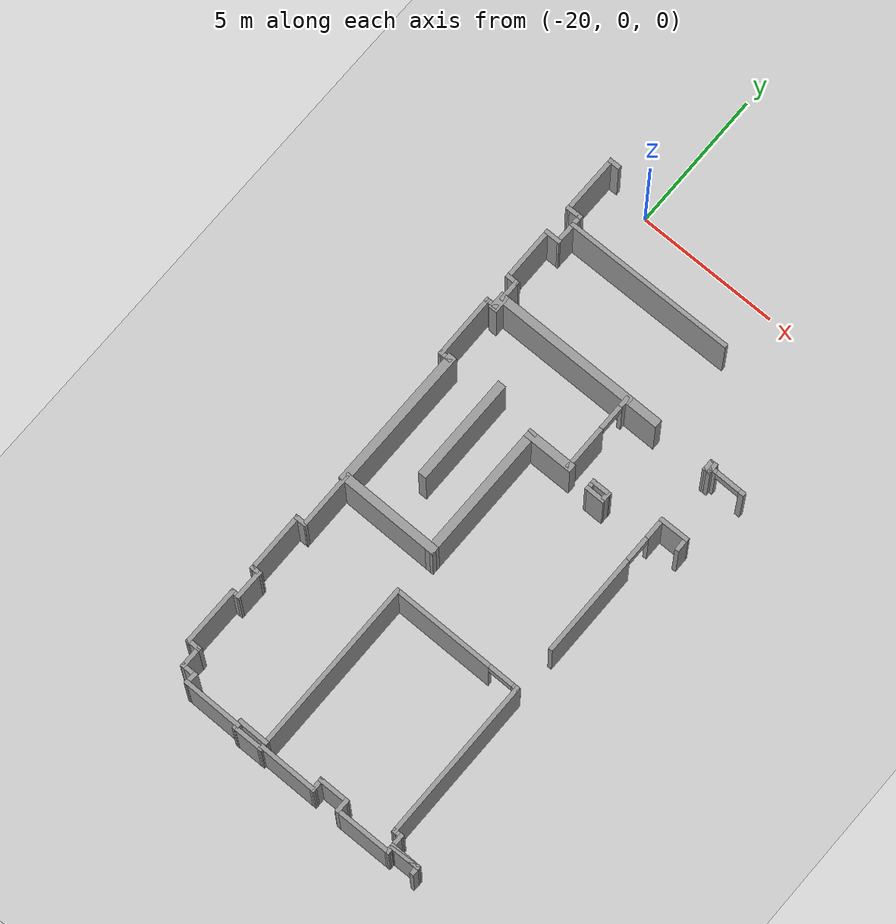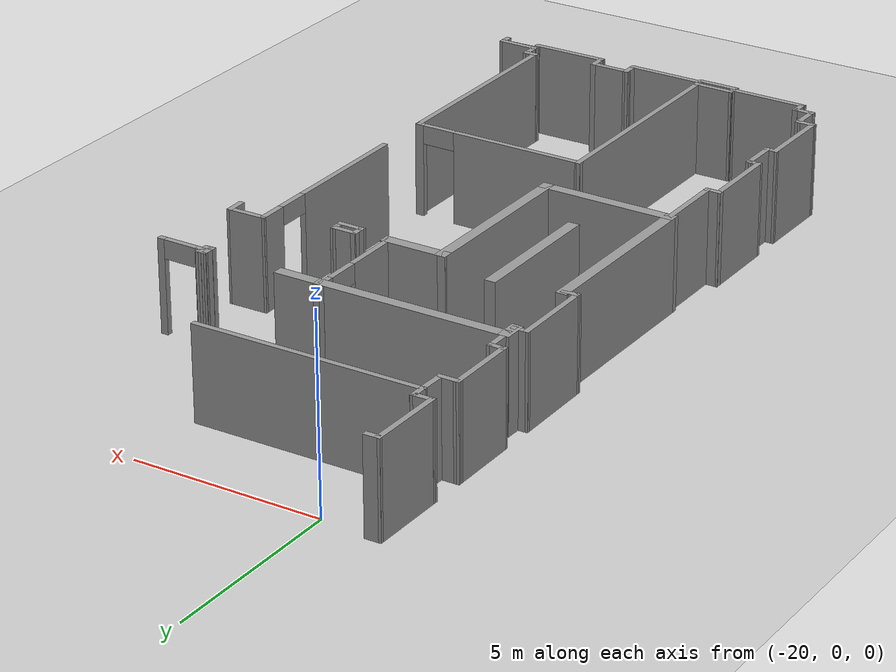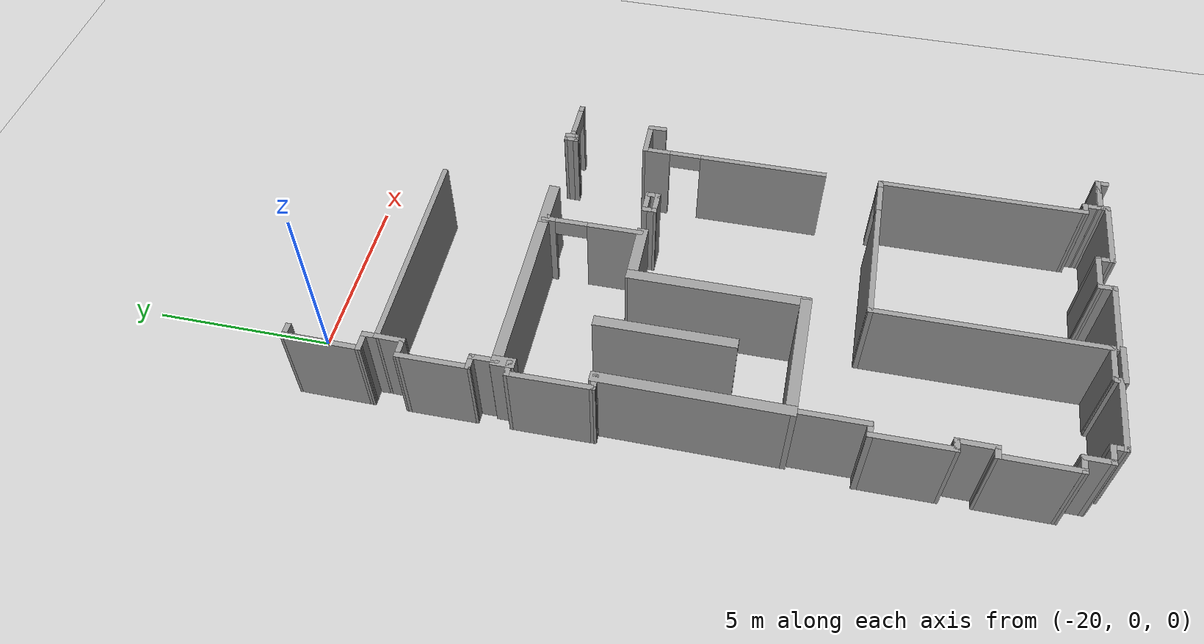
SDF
<sdf version="1.6">
 <world name="default">
  <model name="ground_plane">
   <static>1</static>
   <link name="link">
    <collision name="collision">
     <geometry><plane><normal>0 0 1</normal><size>100 100</size></plane></geometry>
     <surface>
      <contact><collide_bitmask>65535</collide_bitmask></contact>
      <friction><ode><mu>100</mu><mu2>50</mu2></ode></friction>
     </surface>
    </collision>
    <visual name="visual">
     <cast_shadows>0</cast_shadows>
     <geometry><plane><normal>0 0 1</normal><size>100 100</size></plane></geometry>
     <material>
      <script><uri>file://media/materials/scripts/gazebo.material</uri><name>Gazebo/Grey</name></script>
     </material>
    </visual>
   </link>
  </model>
  <model name="Myhal_5th_floor">
   <pose>-0.342666 0.4433 0 0 -0 0</pose>
   <link name="Wall_155">
    <pose>-12.0182 -5.89251 0 0 -0 3.13207</pose>
    <visual name="Wall_155_Visual_0">
     <pose>-0.580241 0 1.25 0 -0 0</pose>
     <geometry><box><size>0.197072 0.15 2.5</size></box></geometry>
     <material>
      <script><uri>file://media/materials/scripts/gazebo.material</uri><name>Gazebo/Grey</name></script>
      <ambient>1 1 1 1</ambient>
     </material>
     <meta><layer>0</layer></meta>
    </visual>
    <collision name="Wall_155_Collision_0">
     <geometry><box><size>0.197072 0.15 2.5</size></box></geometry>
     <pose>-0.580241 0 1.25 0 -0 0</pose>
    </collision>
    <visual name="Wall_155_Visual_1">
     <pose>0.548536 0 1.25 0 -0 0</pose>
     <geometry><box><size>0.260483 0.15 2.5</size></box></geometry>
     <material>
      <script><uri>file://media/materials/scripts/gazebo.material</uri><name>Gazebo/Grey</name></script>
      <ambient>1 1 1 1</ambient>
     </material>
     <meta><layer>0</layer></meta>
    </visual>
    <collision name="Wall_155_Collision_1">
     <geometry><box><size>0.260483 0.15 2.5</size></box></geometry>
     <pose>0.548536 0 1.25 0 -0 0</pose>
    </collision>
    <visual name="Wall_155_Visual_2">
     <pose>-0.031705 0 2.25 0 -0 0</pose>
     <geometry><box><size>0.9 0.15 0.5</size></box></geometry>
     <material>
      <script><uri>file://media/materials/scripts/gazebo.material</uri><name>Gazebo/Grey</name></script>
      <ambient>1 1 1 1</ambient>
     </material>
     <meta><layer>0</layer></meta>
    </visual>
    <collision name="Wall_155_Collision_2">
     <geometry><box><size>0.9 0.15 0.5</size></box></geometry>
     <pose>-0.031705 0 2.25 0 -0 0</pose>
    </collision>
   </link>
   <link name="Wall_156">
    <collision name="Wall_156_Collision">
     <geometry><box><size>0.285613 0.15 2.5</size></box></geometry>
     <pose>0 0 1.25 0 -0 0</pose>
    </collision>
    <visual name="Wall_156_Visual">
     <pose>0 0 1.25 0 -0 0</pose>
     <geometry><box><size>0.285613 0.15 2.5</size></box></geometry>
     <material>
      <script><uri>file://media/materials/scripts/gazebo.material</uri><name>Gazebo/Grey</name></script>
      <ambient>1 1 1 1</ambient>
     </material>
     <meta><layer>0</layer></meta>
    </visual>
    <pose>-12.6248 -5.8192 0 0 -0 1.61332</pose>
   </link>
   <link name="Wall_157">
    <collision name="Wall_157_Collision">
     <geometry><box><size>0.291124 0.15 2.5</size></box></geometry>
     <pose>0 0 1.25 0 -0 0</pose>
    </collision>
    <visual name="Wall_157_Visual">
     <pose>0 0 1.25 0 -0 0</pose>
     <geometry><box><size>0.291124 0.15 2.5</size></box></geometry>
     <material>
      <script><uri>file://media/materials/scripts/gazebo.material</uri><name>Gazebo/Grey</name></script>
      <ambient>1 1 1 1</ambient>
     </material>
     <meta><layer>0</layer></meta>
    </visual>
    <pose>-12.6977 -5.7573 0 0 -0 -3.06086</pose>
   </link>
   <link name="Wall_158">
    <collision name="Wall_158_Collision">
     <geometry><box><size>0.406051 0.15 2.5</size></box></geometry>
     <pose>0 0 1.25 0 -0 0</pose>
    </collision>
    <visual name="Wall_158_Visual">
     <pose>0 0 1.25 0 -0 0</pose>
     <geometry><box><size>0.406051 0.15 2.5</size></box></geometry>
     <material>
      <script><uri>file://media/materials/scripts/gazebo.material</uri><name>Gazebo/Grey</name></script>
      <ambient>1 1 1 1</ambient>
     </material>
     <meta><layer>0</layer></meta>
    </visual>
    <pose>-12.7681 -5.89099 0 0 -0 -1.57431</pose>
   </link>
   <link name="Wall_159">
    <collision name="Wall_159_Collision">
     <geometry><box><size>0.296653 0.15 2.5</size></box></geometry>
     <pose>0 0 1.25 0 -0 0</pose>
    </collision>
    <visual name="Wall_159_Visual">
     <pose>0 0 1.25 0 -0 0</pose>
     <geometry><box><size>0.296653 0.15 2.5</size></box></geometry>
     <material>
      <script><uri>file://media/materials/scripts/gazebo.material</uri><name>Gazebo/Grey</name></script>
      <ambient>1 1 1 1</ambient>
     </material>
     <meta><layer>0</layer></meta>
    </visual>
    <pose>-12.6981 -6.01757 0 0 -0 0.019605</pose>
   </link>
   <link name="Wall_160">
    <collision name="Wall_160_Collision">
     <geometry><box><size>0.296653 0.15 2.5</size></box></geometry>
     <pose>0 0 1.25 0 -0 0</pose>
    </collision>
    <visual name="Wall_160_Visual">
     <pose>0 0 1.25 0 -0 0</pose>
     <geometry><box><size>0.296653 0.15 2.5</size></box></geometry>
     <material>
      <script><uri>file://media/materials/scripts/gazebo.material</uri><name>Gazebo/Grey</name></script>
      <ambient>1 1 1 1</ambient>
     </material>
     <meta><layer>0</layer></meta>
    </visual>
    <pose>-12.6981 -6.01757 0 0 -0 -3.12199</pose>
   </link>
   <link name="Wall_361">
    <pose>-15.0891 -14.9066 0 0 -0 3.14159</pose>
    <visual name="Wall_361_Visual_0">
     <pose>-2.29407 0 1.25 0 -0 0</pose>
     <geometry><box><size>0.242393 0.15 2.5</size></box></geometry>
     <material>
      <script><uri>file://media/materials/scripts/gazebo.material</uri><name>Gazebo/Grey</name></script>
      <ambient>1 1 1 1</ambient>
     </material>
     <meta><layer>0</layer></meta>
    </visual>
    <collision name="Wall_361_Collision_0">
     <geometry><box><size>0.242393 0.15 2.5</size></box></geometry>
     <pose>-2.29407 0 1.25 0 -0 0</pose>
    </collision>
    <visual name="Wall_361_Visual_1">
     <pose>0.571196 0 1.25 0 -0 0</pose>
     <geometry><box><size>3.68814 0.15 2.5</size></box></geometry>
     <material>
      <script><uri>file://media/materials/scripts/gazebo.material</uri><name>Gazebo/Grey</name></script>
      <ambient>1 1 1 1</ambient>
     </material>
     <meta><layer>0</layer></meta>
    </visual>
    <collision name="Wall_361_Collision_1">
     <geometry><box><size>3.68814 0.15 2.5</size></box></geometry>
     <pose>0.571196 0 1.25 0 -0 0</pose>
    </collision>
    <visual name="Wall_361_Visual_2">
     <pose>-1.72287 0 2.25 0 -0 0</pose>
     <geometry><box><size>0.9 0.15 0.5</size></box></geometry>
     <material>
      <script><uri>file://media/materials/scripts/gazebo.material</uri><name>Gazebo/Grey</name></script>
      <ambient>1 1 1 1</ambient>
     </material>
     <meta><layer>0</layer></meta>
    </visual>
    <collision name="Wall_361_Collision_2">
     <geometry><box><size>0.9 0.15 0.5</size></box></geometry>
     <pose>-1.72287 0 2.25 0 -0 0</pose>
    </collision>
   </link>
   <link name="Wall_363">
    <collision name="Wall_363_Collision">
     <geometry><box><size>6.22994 0.15 2.5</size></box></geometry>
     <pose>0 0 1.25 0 -0 0</pose>
    </collision>
    <visual name="Wall_363_Visual">
     <pose>0 0 1.25 0 -0 0</pose>
     <geometry><box><size>6.22994 0.15 2.5</size></box></geometry>
     <material>
      <script><uri>file://media/materials/scripts/gazebo.material</uri><name>Gazebo/Grey</name></script>
      <ambient>1 1 1 1</ambient>
     </material>
     <meta><layer>0</layer></meta>
    </visual>
    <pose>-17.4243 -17.9466 0 0 -0 -1.56916</pose>
   </link>
   <link name="Wall_365">
    <collision name="Wall_365_Collision">
     <geometry><box><size>0.15 0.15 2.5</size></box></geometry>
     <pose>0 0 1.25 0 -0 0</pose>
    </collision>
    <visual name="Wall_365_Visual">
     <pose>0 0 1.25 0 -0 0</pose>
     <geometry><box><size>0.15 0.15 2.5</size></box></geometry>
     <material>
      <script><uri>file://media/materials/scripts/gazebo.material</uri><name>Gazebo/Grey</name></script>
      <ambient>1 1 1 1</ambient>
     </material>
     <meta><layer>0</layer></meta>
    </visual>
    <pose>-18.4123 -21.0163 0 0 -0 0</pose>
   </link>
   <link name="Wall_367">
    <collision name="Wall_367_Collision">
     <geometry><box><size>1.11873 0.15 2.5</size></box></geometry>
     <pose>0 0 1.25 0 -0 0</pose>
    </collision>
    <visual name="Wall_367_Visual">
     <pose>0 0 1.25 0 -0 0</pose>
     <geometry><box><size>1.11873 0.15 2.5</size></box></geometry>
     <material>
      <script><uri>file://media/materials/scripts/gazebo.material</uri><name>Gazebo/Grey</name></script>
      <ambient>1 1 1 1</ambient>
     </material>
     <meta><layer>0</layer></meta>
    </visual>
    <pose>-17.9037 -20.9851 0 0 -0 3.13867</pose>
   </link>
   <link name="Wall_368">
    <collision name="Wall_368_Collision">
     <geometry><box><size>0.396303 0.15 2.5</size></box></geometry>
     <pose>0 0 1.25 0 -0 0</pose>
    </collision>
    <visual name="Wall_368_Visual">
     <pose>0 0 1.25 0 -0 0</pose>
     <geometry><box><size>0.396303 0.15 2.5</size></box></geometry>
     <material>
      <script><uri>file://media/materials/scripts/gazebo.material</uri><name>Gazebo/Grey</name></script>
      <ambient>1 1 1 1</ambient>
     </material>
     <meta><layer>0</layer></meta>
    </visual>
    <pose>-18.3931 -21.1068 0 0 -0 -1.61118</pose>
   </link>
   <link name="Wall_369">
    <collision name="Wall_369_Collision">
     <geometry><box><size>1.13939 0.15 2.5</size></box></geometry>
     <pose>0 0 1.25 0 -0 0</pose>
    </collision>
    <visual name="Wall_369_Visual">
     <pose>0 0 1.25 0 -0 0</pose>
     <geometry><box><size>1.13939 0.15 2.5</size></box></geometry>
     <material>
      <script><uri>file://media/materials/scripts/gazebo.material</uri><name>Gazebo/Grey</name></script>
      <ambient>1 1 1 1</ambient>
     </material>
     <meta><layer>0</layer></meta>
    </visual>
    <pose>-17.9034 -21.2273 0 0 -0 0.005025</pose>
   </link>
   <link name="Wall_370">
    <collision name="Wall_370_Collision">
     <geometry><box><size>0.388543 0.15 2.5</size></box></geometry>
     <pose>0 0 1.25 0 -0 0</pose>
    </collision>
    <visual name="Wall_370_Visual">
     <pose>0 0 1.25 0 -0 0</pose>
     <geometry><box><size>0.388543 0.15 2.5</size></box></geometry>
     <material>
      <script><uri>file://media/materials/scripts/gazebo.material</uri><name>Gazebo/Grey</name></script>
      <ambient>1 1 1 1</ambient>
     </material>
     <meta><layer>0</layer></meta>
    </visual>
    <pose>-17.4165 -21.1057 0 0 -0 1.61572</pose>
   </link>
   <link name="Wall_372">
    <collision name="Wall_372_Collision">
     <geometry><box><size>5.79044 0.15 2.5</size></box></geometry>
     <pose>0 0 1.25 0 -0 0</pose>
    </collision>
    <visual name="Wall_372_Visual">
     <pose>0 0 1.25 0 -0 0</pose>
     <geometry><box><size>5.79044 0.15 2.5</size></box></geometry>
     <material>
      <script><uri>file://media/materials/scripts/gazebo.material</uri><name>Gazebo/Grey</name></script>
      <ambient>1 1 1 1</ambient>
     </material>
     <meta><layer>0</layer></meta>
    </visual>
    <pose>-12.7463 -17.7269 0 0 -0 -1.56992</pose>
   </link>
   <link name="Wall_373">
    <collision name="Wall_373_Collision">
     <geometry><box><size>0.398094 0.15 2.5</size></box></geometry>
     <pose>0 0 1.25 0 -0 0</pose>
    </collision>
    <visual name="Wall_373_Visual">
     <pose>0 0 1.25 0 -0 0</pose>
     <geometry><box><size>0.398094 0.15 2.5</size></box></geometry>
     <material>
      <script><uri>file://media/materials/scripts/gazebo.material</uri><name>Gazebo/Grey</name></script>
      <ambient>1 1 1 1</ambient>
     </material>
     <meta><layer>0</layer></meta>
    </visual>
    <pose>-12.6198 -20.5452 0 0 -0 0.014887</pose>
   </link>
   <link name="Wall_374">
    <collision name="Wall_374_Collision">
     <geometry><box><size>0.537042 0.15 2.5</size></box></geometry>
     <pose>0 0 1.25 0 -0 0</pose>
    </collision>
    <visual name="Wall_374_Visual">
     <pose>0 0 1.25 0 -0 0</pose>
     <geometry><box><size>0.537042 0.15 2.5</size></box></geometry>
     <material>
      <script><uri>file://media/materials/scripts/gazebo.material</uri><name>Gazebo/Grey</name></script>
      <ambient>1 1 1 1</ambient>
     </material>
     <meta><layer>0</layer></meta>
    </visual>
    <pose>-12.4958 -20.7369 0 0 -0 -1.5708</pose>
   </link>
   <link name="Wall_379">
    <collision name="Wall_379_Collision">
     <geometry><box><size>0.365876 0.15 2.5</size></box></geometry>
     <pose>0 0 1.25 0 -0 0</pose>
    </collision>
    <visual name="Wall_379_Visual">
     <pose>0 0 1.25 0 -0 0</pose>
     <geometry><box><size>0.365876 0.15 2.5</size></box></geometry>
     <material>
      <script><uri>file://media/materials/scripts/gazebo.material</uri><name>Gazebo/Grey</name></script>
      <ambient>1 1 1 1</ambient>
     </material>
     <meta><layer>0</layer></meta>
    </visual>
    <pose>-11.5177 -21.0458 0 0 -0 1.56397</pose>
   </link>
   <link name="Wall_381">
    <collision name="Wall_381_Collision">
     <geometry><box><size>0.15 0.15 2.5</size></box></geometry>
     <pose>0 0 1.25 0 -0 0</pose>
    </collision>
    <visual name="Wall_381_Visual">
     <pose>0 0 1.25 0 -0 0</pose>
     <geometry><box><size>0.15 0.15 2.5</size></box></geometry>
     <material>
      <script><uri>file://media/materials/scripts/gazebo.material</uri><name>Gazebo/Grey</name></script>
      <ambient>1 1 1 1</ambient>
     </material>
     <meta><layer>0</layer></meta>
    </visual>
    <pose>-12.4578 -20.9586 0 0 -0 0</pose>
   </link>
   <link name="Wall_385">
    <collision name="Wall_385_Collision">
     <geometry><box><size>1.09108 0.15 2.5</size></box></geometry>
     <pose>0 0 1.25 0 -0 0</pose>
    </collision>
    <visual name="Wall_385_Visual">
     <pose>0 0 1.25 0 -0 0</pose>
     <geometry><box><size>1.09108 0.15 2.5</size></box></geometry>
     <material>
      <script><uri>file://media/materials/scripts/gazebo.material</uri><name>Gazebo/Grey</name></script>
      <ambient>1 1 1 1</ambient>
     </material>
     <meta><layer>0</layer></meta>
    </visual>
    <pose>-11.9874 -20.9482 0 0 -0 0.022027</pose>
   </link>
   <link name="Wall_386">
    <collision name="Wall_386_Collision">
     <geometry><box><size>1.12597 0.15 2.5</size></box></geometry>
     <pose>0 0 1.25 0 -0 0</pose>
    </collision>
    <visual name="Wall_386_Visual">
     <pose>0 0 1.25 0 -0 0</pose>
     <geometry><box><size>1.12597 0.15 2.5</size></box></geometry>
     <material>
      <script><uri>file://media/materials/scripts/gazebo.material</uri><name>Gazebo/Grey</name></script>
      <ambient>1 1 1 1</ambient>
     </material>
     <meta><layer>0</layer></meta>
    </visual>
    <pose>-12.0049 -20.9338 0 0 -0 3.13323</pose>
   </link>
   <link name="Wall_388">
    <collision name="Wall_388_Collision">
     <geometry><box><size>0.364986 0.15 2.5</size></box></geometry>
     <pose>0 0 1.25 0 -0 0</pose>
    </collision>
    <visual name="Wall_388_Visual">
     <pose>0 0 1.25 0 -0 0</pose>
     <geometry><box><size>0.364986 0.15 2.5</size></box></geometry>
     <material>
      <script><uri>file://media/materials/scripts/gazebo.material</uri><name>Gazebo/Grey</name></script>
      <ambient>1 1 1 1</ambient>
     </material>
     <meta><layer>0</layer></meta>
    </visual>
    <pose>-12.4929 -21.0393 0 0 -0 -1.5508</pose>
   </link>
   <link name="Wall_392">
    <collision name="Wall_392_Collision">
     <geometry><box><size>2.08926 0.15 2.5</size></box></geometry>
     <pose>0 0 1.25 0 -0 0</pose>
    </collision>
    <visual name="Wall_392_Visual">
     <pose>0 0 1.25 0 -0 0</pose>
     <geometry><box><size>2.08926 0.15 2.5</size></box></geometry>
     <material>
      <script><uri>file://media/materials/scripts/gazebo.material</uri><name>Gazebo/Grey</name></script>
      <ambient>1 1 1 1</ambient>
     </material>
     <meta><layer>0</layer></meta>
    </visual>
    <pose>-13.4603 -21.1532 0 0 -0 -3.13501</pose>
   </link>
   <link name="Wall_393">
    <collision name="Wall_393_Collision">
     <geometry><box><size>0.524238 0.15 2.5</size></box></geometry>
     <pose>0 0 1.25 0 -0 0</pose>
    </collision>
    <visual name="Wall_393_Visual">
     <pose>0 0 1.25 0 -0 0</pose>
     <geometry><box><size>0.524238 0.15 2.5</size></box></geometry>
     <material>
      <script><uri>file://media/materials/scripts/gazebo.material</uri><name>Gazebo/Grey</name></script>
      <ambient>1 1 1 1</ambient>
     </material>
     <meta><layer>0</layer></meta>
    </visual>
    <pose>-14.4299 -20.9729 0 0 -0 1.5708</pose>
   </link>
   <link name="Wall_394">
    <collision name="Wall_394_Collision">
     <geometry><box><size>1.1338 0.15 2.5</size></box></geometry>
     <pose>0 0 1.25 0 -0 0</pose>
    </collision>
    <visual name="Wall_394_Visual">
     <pose>0 0 1.25 0 -0 0</pose>
     <geometry><box><size>1.1338 0.15 2.5</size></box></geometry>
     <material>
      <script><uri>file://media/materials/scripts/gazebo.material</uri><name>Gazebo/Grey</name></script>
      <ambient>1 1 1 1</ambient>
     </material>
     <meta><layer>0</layer></meta>
    </visual>
    <pose>-14.9218 -20.7875 0 0 -0 -3.13908</pose>
   </link>
   <link name="Wall_395">
    <collision name="Wall_395_Collision">
     <geometry><box><size>0.515842 0.15 2.5</size></box></geometry>
     <pose>0 0 1.25 0 -0 0</pose>
    </collision>
    <visual name="Wall_395_Visual">
     <pose>0 0 1.25 0 -0 0</pose>
     <geometry><box><size>0.515842 0.15 2.5</size></box></geometry>
     <material>
      <script><uri>file://media/materials/scripts/gazebo.material</uri><name>Gazebo/Grey</name></script>
      <ambient>1 1 1 1</ambient>
     </material>
     <meta><layer>0</layer></meta>
    </visual>
    <pose>-15.4125 -20.9717 0 0 -0 -1.56404</pose>
   </link>
   <link name="Wall_397">
    <collision name="Wall_397_Collision">
     <geometry><box><size>2.12501 0.15 2.5</size></box></geometry>
     <pose>0 0 1.25 0 -0 0</pose>
    </collision>
    <visual name="Wall_397_Visual">
     <pose>0 0 1.25 0 -0 0</pose>
     <geometry><box><size>2.12501 0.15 2.5</size></box></geometry>
     <material>
      <script><uri>file://media/materials/scripts/gazebo.material</uri><name>Gazebo/Grey</name></script>
      <ambient>1 1 1 1</ambient>
     </material>
     <meta><layer>0</layer></meta>
    </visual>
    <pose>-16.3988 -21.1521 0 0 -0 3.13909</pose>
   </link>
   <link name="Wall_399">
    <pose>-12.7531 -10.6926 0 0 -0 -1.56953</pose>
    <visual name="Wall_399_Visual_0">
     <pose>-2.26327 0 1.25 0 -0 0</pose>
     <geometry><box><size>0.801592 0.15 2.5</size></box></geometry>
     <material>
      <script><uri>file://media/materials/scripts/gazebo.material</uri><name>Gazebo/Grey</name></script>
      <ambient>1 1 1 1</ambient>
     </material>
     <meta><layer>0</layer></meta>
    </visual>
    <collision name="Wall_399_Collision_0">
     <geometry><box><size>0.801592 0.15 2.5</size></box></geometry>
     <pose>-2.26327 0 1.25 0 -0 0</pose>
    </collision>
    <visual name="Wall_399_Visual_1">
     <pose>0.850796 0 1.25 0 -0 0</pose>
     <geometry><box><size>3.62654 0.15 2.5</size></box></geometry>
     <material>
      <script><uri>file://media/materials/scripts/gazebo.material</uri><name>Gazebo/Grey</name></script>
      <ambient>1 1 1 1</ambient>
     </material>
     <meta><layer>0</layer></meta>
    </visual>
    <collision name="Wall_399_Collision_1">
     <geometry><box><size>3.62654 0.15 2.5</size></box></geometry>
     <pose>0.850796 0 1.25 0 -0 0</pose>
    </collision>
    <visual name="Wall_399_Visual_2">
     <pose>-1.41247 0 2.25 0 -0 0</pose>
     <geometry><box><size>0.9 0.15 0.5</size></box></geometry>
     <material>
      <script><uri>file://media/materials/scripts/gazebo.material</uri><name>Gazebo/Grey</name></script>
      <ambient>1 1 1 1</ambient>
     </material>
     <meta><layer>0</layer></meta>
    </visual>
    <collision name="Wall_399_Collision_2">
     <geometry><box><size>0.9 0.15 0.5</size></box></geometry>
     <pose>-1.41247 0 2.25 0 -0 0</pose>
    </collision>
   </link>
   <link name="Wall_408">
    <collision name="Wall_408_Collision">
     <geometry><box><size>1.08496 0.15 2.5</size></box></geometry>
     <pose>0 0 1.25 0 -0 0</pose>
    </collision>
    <visual name="Wall_408_Visual">
     <pose>0 0 1.25 0 -0 0</pose>
     <geometry><box><size>1.08496 0.15 2.5</size></box></geometry>
     <material>
      <script><uri>file://media/materials/scripts/gazebo.material</uri><name>Gazebo/Grey</name></script>
      <ambient>1 1 1 1</ambient>
     </material>
     <meta><layer>0</layer></meta>
    </visual>
    <pose>-12.2889 -8.09701 0 0 -0 0.013985</pose>
   </link>
   <link name="Wall_409">
    <collision name="Wall_409_Collision">
     <geometry><box><size>0.542282 0.15 2.5</size></box></geometry>
     <pose>0 0 1.25 0 -0 0</pose>
    </collision>
    <visual name="Wall_409_Visual">
     <pose>0 0 1.25 0 -0 0</pose>
     <geometry><box><size>0.542282 0.15 2.5</size></box></geometry>
     <material>
      <script><uri>file://media/materials/scripts/gazebo.material</uri><name>Gazebo/Grey</name></script>
      <ambient>1 1 1 1</ambient>
     </material>
     <meta><layer>0</layer></meta>
    </visual>
    <pose>-11.8182 -8.28661 0 0 -0 -1.55413</pose>
   </link>
   <link name="Wall_424">
    <collision name="Wall_424_Collision">
     <geometry><box><size>2.16048 0.15 2.5</size></box></geometry>
     <pose>0 0 1.25 0 -0 0</pose>
    </collision>
    <visual name="Wall_424_Visual">
     <pose>0 0 1.25 0 -0 0</pose>
     <geometry><box><size>2.16048 0.15 2.5</size></box></geometry>
     <material>
      <script><uri>file://media/materials/scripts/gazebo.material</uri><name>Gazebo/Grey</name></script>
      <ambient>1 1 1 1</ambient>
     </material>
     <meta><layer>0</layer></meta>
    </visual>
    <pose>-19.4059 -21.1191 0 0 -0 3.13736</pose>
   </link>
   <link name="Wall_425">
    <collision name="Wall_425_Collision">
     <geometry><box><size>0.471118 0.15 2.5</size></box></geometry>
     <pose>0 0 1.25 0 -0 0</pose>
    </collision>
    <visual name="Wall_425_Visual">
     <pose>0 0 1.25 0 -0 0</pose>
     <geometry><box><size>0.471118 0.15 2.5</size></box></geometry>
     <material>
      <script><uri>file://media/materials/scripts/gazebo.material</uri><name>Gazebo/Grey</name></script>
      <ambient>1 1 1 1</ambient>
     </material>
     <meta><layer>0</layer></meta>
    </visual>
    <pose>-20.4058 -20.9544 0 0 -0 1.5376</pose>
   </link>
   <link name="Wall_426">
    <collision name="Wall_426_Collision">
     <geometry><box><size>0.581061 0.15 2.5</size></box></geometry>
     <pose>0 0 1.25 0 -0 0</pose>
    </collision>
    <visual name="Wall_426_Visual">
     <pose>0 0 1.25 0 -0 0</pose>
     <geometry><box><size>0.581061 0.15 2.5</size></box></geometry>
     <material>
      <script><uri>file://media/materials/scripts/gazebo.material</uri><name>Gazebo/Grey</name></script>
      <ambient>1 1 1 1</ambient>
     </material>
     <meta><layer>0</layer></meta>
    </visual>
    <pose>-20.6192 -20.7963 0 0 -0 3.13759</pose>
   </link>
   <link name="Wall_427">
    <collision name="Wall_427_Collision">
     <geometry><box><size>0.832356 0.15 2.5</size></box></geometry>
     <pose>0 0 1.25 0 -0 0</pose>
    </collision>
    <visual name="Wall_427_Visual">
     <pose>0 0 1.25 0 -0 0</pose>
     <geometry><box><size>0.832356 0.15 2.5</size></box></geometry>
     <material>
      <script><uri>file://media/materials/scripts/gazebo.material</uri><name>Gazebo/Grey</name></script>
      <ambient>1 1 1 1</ambient>
     </material>
     <meta><layer>0</layer></meta>
    </visual>
    <pose>-20.8331 -20.4543 0 0 -0 1.5661</pose>
   </link>
   <link name="Wall_428">
    <collision name="Wall_428_Collision">
     <geometry><box><size>0.536172 0.15 2.5</size></box></geometry>
     <pose>0 0 1.25 0 -0 0</pose>
    </collision>
    <visual name="Wall_428_Visual">
     <pose>0 0 1.25 0 -0 0</pose>
     <geometry><box><size>0.536172 0.15 2.5</size></box></geometry>
     <material>
      <script><uri>file://media/materials/scripts/gazebo.material</uri><name>Gazebo/Grey</name></script>
      <ambient>1 1 1 1</ambient>
     </material>
     <meta><layer>0</layer></meta>
    </visual>
    <pose>-21.0214 -20.1146 0 0 -0 -3.13394</pose>
   </link>
   <link name="Wall_430">
    <collision name="Wall_430_Collision">
     <geometry><box><size>2.13923 0.15 2.5</size></box></geometry>
     <pose>0 0 1.25 0 -0 0</pose>
    </collision>
    <visual name="Wall_430_Visual">
     <pose>0 0 1.25 0 -0 0</pose>
     <geometry><box><size>2.13923 0.15 2.5</size></box></geometry>
     <material>
      <script><uri>file://media/materials/scripts/gazebo.material</uri><name>Gazebo/Grey</name></script>
      <ambient>1 1 1 1</ambient>
     </material>
     <meta><layer>0</layer></meta>
    </visual>
    <pose>-21.2102 -19.1214 0 0 -0 1.56652</pose>
   </link>
   <link name="Wall_431">
    <collision name="Wall_431_Collision">
     <geometry><box><size>0.379525 0.15 2.5</size></box></geometry>
     <pose>0 0 1.25 0 -0 0</pose>
    </collision>
    <visual name="Wall_431_Visual">
     <pose>0 0 1.25 0 -0 0</pose>
     <geometry><box><size>0.379525 0.15 2.5</size></box></geometry>
     <material>
      <script><uri>file://media/materials/scripts/gazebo.material</uri><name>Gazebo/Grey</name></script>
      <ambient>1 1 1 1</ambient>
     </material>
     <meta><layer>0</layer></meta>
    </visual>
    <pose>-21.0912 -18.1268 0 0 -0 0</pose>
   </link>
   <link name="Wall_432">
    <collision name="Wall_432_Collision">
     <geometry><box><size>1.09177 0.15 2.5</size></box></geometry>
     <pose>0 0 1.25 0 -0 0</pose>
    </collision>
    <visual name="Wall_432_Visual">
     <pose>0 0 1.25 0 -0 0</pose>
     <geometry><box><size>1.09177 0.15 2.5</size></box></geometry>
     <material>
      <script><uri>file://media/materials/scripts/gazebo.material</uri><name>Gazebo/Grey</name></script>
      <ambient>1 1 1 1</ambient>
     </material>
     <meta><layer>0</layer></meta>
    </visual>
    <pose>-20.9745 -17.656 0 0 -0 1.56657</pose>
   </link>
   <link name="Wall_433">
    <collision name="Wall_433_Collision">
     <geometry><box><size>0.393488 0.15 2.5</size></box></geometry>
     <pose>0 0 1.25 0 -0 0</pose>
    </collision>
    <visual name="Wall_433_Visual">
     <pose>0 0 1.25 0 -0 0</pose>
     <geometry><box><size>0.393488 0.15 2.5</size></box></geometry>
     <material>
      <script><uri>file://media/materials/scripts/gazebo.material</uri><name>Gazebo/Grey</name></script>
      <ambient>1 1 1 1</ambient>
     </material>
     <meta><layer>0</layer></meta>
    </visual>
    <pose>-21.0942 -17.1851 0 0 -0 3.14159</pose>
   </link>
   <link name="Wall_436">
    <collision name="Wall_436_Collision">
     <geometry><box><size>2.19065 0.15 2.5</size></box></geometry>
     <pose>0 0 1.25 0 -0 0</pose>
    </collision>
    <visual name="Wall_436_Visual">
     <pose>0 0 1.25 0 -0 0</pose>
     <geometry><box><size>2.19065 0.15 2.5</size></box></geometry>
     <material>
      <script><uri>file://media/materials/scripts/gazebo.material</uri><name>Gazebo/Grey</name></script>
      <ambient>1 1 1 1</ambient>
     </material>
     <meta><layer>0</layer></meta>
    </visual>
    <pose>-21.2191 -16.1648 0 0 -0 1.57394</pose>
   </link>
   <link name="Wall_438">
    <collision name="Wall_438_Collision">
     <geometry><box><size>0.464829 0.15 2.5</size></box></geometry>
     <pose>0 0 1.25 0 -0 0</pose>
    </collision>
    <visual name="Wall_438_Visual">
     <pose>0 0 1.25 0 -0 0</pose>
     <geometry><box><size>0.464829 0.15 2.5</size></box></geometry>
     <material>
      <script><uri>file://media/materials/scripts/gazebo.material</uri><name>Gazebo/Grey</name></script>
      <ambient>1 1 1 1</ambient>
     </material>
     <meta><layer>0</layer></meta>
    </visual>
    <pose>-21.0681 -15.1434 0 0 -0 0.006731</pose>
   </link>
   <link name="Wall_439">
    <collision name="Wall_439_Collision">
     <geometry><box><size>2.05701 0.15 2.5</size></box></geometry>
     <pose>0 0 1.25 0 -0 0</pose>
    </collision>
    <visual name="Wall_439_Visual">
     <pose>0 0 1.25 0 -0 0</pose>
     <geometry><box><size>2.05701 0.15 2.5</size></box></geometry>
     <material>
      <script><uri>file://media/materials/scripts/gazebo.material</uri><name>Gazebo/Grey</name></script>
      <ambient>1 1 1 1</ambient>
     </material>
     <meta><layer>0</layer></meta>
    </visual>
    <pose>-20.914 -14.1888 0 0 -0 1.57419</pose>
   </link>
   <link name="Wall_441">
    <collision name="Wall_441_Collision">
     <geometry><box><size>3.72823 0.3 2.5</size></box></geometry>
     <pose>0 0 1.25 0 -0 0</pose>
    </collision>
    <visual name="Wall_441_Visual">
     <pose>0 0 1.25 0 -0 0</pose>
     <geometry><box><size>3.72823 0.3 2.5</size></box></geometry>
     <material>
      <script><uri>file://media/materials/scripts/gazebo.material</uri><name>Gazebo/Grey</name></script>
      <ambient>1 1 1 1</ambient>
     </material>
     <meta><layer>0</layer></meta>
    </visual>
    <pose>-19.2096 -13.2456 0 0 -0 -0.005983</pose>
   </link>
   <link name="Wall_444">
    <collision name="Wall_444_Collision">
     <geometry><box><size>4.9315 0.3 2.5</size></box></geometry>
     <pose>0 0 1.25 0 -0 0</pose>
    </collision>
    <visual name="Wall_444_Visual">
     <pose>0 0 1.25 0 -0 0</pose>
     <geometry><box><size>4.9315 0.3 2.5</size></box></geometry>
     <material>
      <script><uri>file://media/materials/scripts/gazebo.material</uri><name>Gazebo/Grey</name></script>
      <ambient>1 1 1 1</ambient>
     </material>
     <meta><layer>0</layer></meta>
    </visual>
    <pose>-17.4944 -10.9403 0 0 -0 1.57036</pose>
   </link>
   <link name="Wall_446">
    <collision name="Wall_446_Collision">
     <geometry><box><size>3.77179 0.3 2.5</size></box></geometry>
     <pose>0 0 1.25 0 -0 0</pose>
    </collision>
    <visual name="Wall_446_Visual">
     <pose>0 0 1.25 0 -0 0</pose>
     <geometry><box><size>3.77179 0.3 2.5</size></box></geometry>
     <material>
      <script><uri>file://media/materials/scripts/gazebo.material</uri><name>Gazebo/Grey</name></script>
      <ambient>1 1 1 1</ambient>
     </material>
     <meta><layer>0</layer></meta>
    </visual>
    <pose>-19.1944 -9.83171 0 0 -0 -1.56907</pose>
   </link>
   <link name="Wall_448">
    <collision name="Wall_448_Collision">
     <geometry><box><size>5.14807 0.3 2.5</size></box></geometry>
     <pose>0 0 1.25 0 -0 0</pose>
    </collision>
    <visual name="Wall_448_Visual">
     <pose>0 0 1.25 0 -0 0</pose>
     <geometry><box><size>5.14807 0.3 2.5</size></box></geometry>
     <material>
      <script><uri>file://media/materials/scripts/gazebo.material</uri><name>Gazebo/Grey</name></script>
      <ambient>1 1 1 1</ambient>
     </material>
     <meta><layer>0</layer></meta>
    </visual>
    <pose>-20.9174 -10.8113 0 0 -0 -1.57339</pose>
   </link>
   <link name="Wall_450">
    <collision name="Wall_450_Collision">
     <geometry><box><size>1.80357 0.3 2.5</size></box></geometry>
     <pose>0 0 1.25 0 -0 0</pose>
    </collision>
    <visual name="Wall_450_Visual">
     <pose>0 0 1.25 0 -0 0</pose>
     <geometry><box><size>1.80357 0.3 2.5</size></box></geometry>
     <material>
      <script><uri>file://media/materials/scripts/gazebo.material</uri><name>Gazebo/Grey</name></script>
      <ambient>1 1 1 1</ambient>
     </material>
     <meta><layer>0</layer></meta>
    </visual>
    <pose>-16.7414 -8.62321 0 0 -0 0.001995</pose>
   </link>
   <link name="Wall_452">
    <pose>-15.9924 -7.24171 0 0 -0 1.57297</pose>
    <visual name="Wall_452_Visual_0">
     <pose>-0.649288 0 1.25 0 -0 0</pose>
     <geometry><box><size>1.61164 0.15 2.5</size></box></geometry>
     <material>
      <script><uri>file://media/materials/scripts/gazebo.material</uri><name>Gazebo/Grey</name></script>
      <ambient>1 1 1 1</ambient>
     </material>
     <meta><layer>0</layer></meta>
    </visual>
    <collision name="Wall_452_Collision_0">
     <geometry><box><size>1.61164 0.15 2.5</size></box></geometry>
     <pose>-0.649288 0 1.25 0 -0 0</pose>
    </collision>
    <visual name="Wall_452_Visual_1">
     <pose>1.25582 0 1.25 0 -0 0</pose>
     <geometry><box><size>0.398576 0.15 2.5</size></box></geometry>
     <material>
      <script><uri>file://media/materials/scripts/gazebo.material</uri><name>Gazebo/Grey</name></script>
      <ambient>1 1 1 1</ambient>
     </material>
     <meta><layer>0</layer></meta>
    </visual>
    <collision name="Wall_452_Collision_1">
     <geometry><box><size>0.398576 0.15 2.5</size></box></geometry>
     <pose>1.25582 0 1.25 0 -0 0</pose>
    </collision>
    <visual name="Wall_452_Visual_2">
     <pose>0.606534 0 2.25 0 -0 0</pose>
     <geometry><box><size>0.9 0.15 0.5</size></box></geometry>
     <material>
      <script><uri>file://media/materials/scripts/gazebo.material</uri><name>Gazebo/Grey</name></script>
      <ambient>1 1 1 1</ambient>
     </material>
     <meta><layer>0</layer></meta>
    </visual>
    <collision name="Wall_452_Collision_2">
     <geometry><box><size>0.9 0.15 0.5</size></box></geometry>
     <pose>0.606534 0 2.25 0 -0 0</pose>
    </collision>
   </link>
   <link name="Wall_453">
    <collision name="Wall_453_Collision">
     <geometry><box><size>5.23177 0.3 2.5</size></box></geometry>
     <pose>0 0 1.25 0 -0 0</pose>
    </collision>
    <visual name="Wall_453_Visual">
     <pose>0 0 1.25 0 -0 0</pose>
     <geometry><box><size>5.23177 0.3 2.5</size></box></geometry>
     <material>
      <script><uri>file://media/materials/scripts/gazebo.material</uri><name>Gazebo/Grey</name></script>
      <ambient>1 1 1 1</ambient>
     </material>
     <meta><layer>0</layer></meta>
    </visual>
    <pose>-18.4612 -5.8617 0 0 -0 3.14159</pose>
   </link>
   <link name="Wall_454">
    <collision name="Wall_454_Collision">
     <geometry><box><size>0.629006 0.3 2.5</size></box></geometry>
     <pose>0 0 1.25 0 -0 0</pose>
    </collision>
    <visual name="Wall_454_Visual">
     <pose>0 0 1.25 0 -0 0</pose>
     <geometry><box><size>0.629006 0.3 2.5</size></box></geometry>
     <material>
      <script><uri>file://media/materials/scripts/gazebo.material</uri><name>Gazebo/Grey</name></script>
      <ambient>1 1 1 1</ambient>
     </material>
     <meta><layer>0</layer></meta>
    </visual>
    <pose>-20.9323 -6.0304 0 0 -0 -1.57688</pose>
   </link>
   <link name="Wall_456">
    <collision name="Wall_456_Collision">
     <geometry><box><size>0.472234 0.15 2.5</size></box></geometry>
     <pose>0 0 1.25 0 -0 0</pose>
    </collision>
    <visual name="Wall_456_Visual">
     <pose>0 0 1.25 0 -0 0</pose>
     <geometry><box><size>0.472234 0.15 2.5</size></box></geometry>
     <material>
      <script><uri>file://media/materials/scripts/gazebo.material</uri><name>Gazebo/Grey</name></script>
      <ambient>1 1 1 1</ambient>
     </material>
     <meta><layer>0</layer></meta>
    </visual>
    <pose>-21.094 -6.19987 0 0 -0 -3.11066</pose>
   </link>
   <link name="Wall_457">
    <collision name="Wall_457_Collision">
     <geometry><box><size>2.33555 0.15 2.5</size></box></geometry>
     <pose>0 0 1.25 0 -0 0</pose>
    </collision>
    <visual name="Wall_457_Visual">
     <pose>0 0 1.25 0 -0 0</pose>
     <geometry><box><size>2.33555 0.15 2.5</size></box></geometry>
     <material>
      <script><uri>file://media/materials/scripts/gazebo.material</uri><name>Gazebo/Grey</name></script>
      <ambient>1 1 1 1</ambient>
     </material>
     <meta><layer>0</layer></meta>
    </visual>
    <pose>-21.2467 -7.29759 0 0 -0 -1.56344</pose>
   </link>
   <link name="Wall_458">
    <collision name="Wall_458_Collision">
     <geometry><box><size>0.477563 0.15 2.5</size></box></geometry>
     <pose>0 0 1.25 0 -0 0</pose>
    </collision>
    <visual name="Wall_458_Visual">
     <pose>0 0 1.25 0 -0 0</pose>
     <geometry><box><size>0.477563 0.15 2.5</size></box></geometry>
     <material>
      <script><uri>file://media/materials/scripts/gazebo.material</uri><name>Gazebo/Grey</name></script>
      <ambient>1 1 1 1</ambient>
     </material>
     <meta><layer>0</layer></meta>
    </visual>
    <pose>-21.0749 -8.38879 0 0 -0 0.009425</pose>
   </link>
   <link name="Wall_682">
    <collision name="Wall_682_Collision">
     <geometry><box><size>1.3942 0.3 2.5</size></box></geometry>
     <pose>0 0 1.25 0 -0 0</pose>
    </collision>
    <visual name="Wall_682_Visual">
     <pose>0 0 1.25 0 -0 0</pose>
     <geometry><box><size>1.3942 0.3 2.5</size></box></geometry>
     <material>
      <script><uri>file://media/materials/scripts/gazebo.material</uri><name>Gazebo/Grey</name></script>
      <ambient>1 1 1 1</ambient>
     </material>
     <meta><layer>0</layer></meta>
    </visual>
    <pose>-15.4483 -5.8624 0 0 -0 -0.00125</pose>
   </link>
   <link name="Wall_684">
    <collision name="Wall_684_Collision">
     <geometry><box><size>0.806185 0.15 2.5</size></box></geometry>
     <pose>0 0 1.25 0 -0 0</pose>
    </collision>
    <visual name="Wall_684_Visual">
     <pose>0 0 1.25 0 -0 0</pose>
     <geometry><box><size>0.806185 0.15 2.5</size></box></geometry>
     <material>
      <script><uri>file://media/materials/scripts/gazebo.material</uri><name>Gazebo/Grey</name></script>
      <ambient>1 1 1 1</ambient>
     </material>
     <meta><layer>0</layer></meta>
    </visual>
    <pose>-20.9339 -5.53782 0 0 -0 1.57892</pose>
   </link>
   <link name="Wall_685">
    <collision name="Wall_685_Collision">
     <geometry><box><size>0.464771 0.15 2.5</size></box></geometry>
     <pose>0 0 1.25 0 -0 0</pose>
    </collision>
    <visual name="Wall_685_Visual">
     <pose>0 0 1.25 0 -0 0</pose>
     <geometry><box><size>0.464771 0.15 2.5</size></box></geometry>
     <material>
      <script><uri>file://media/materials/scripts/gazebo.material</uri><name>Gazebo/Grey</name></script>
      <ambient>1 1 1 1</ambient>
     </material>
     <meta><layer>0</layer></meta>
    </visual>
    <pose>-21.0939 -5.20977 0 0 -0 -3.14141</pose>
   </link>
   <link name="Wall_686">
    <collision name="Wall_686_Collision">
     <geometry><box><size>2.00313 0.15 2.5</size></box></geometry>
     <pose>0 0 1.25 0 -0 0</pose>
    </collision>
    <visual name="Wall_686_Visual">
     <pose>0 0 1.25 0 -0 0</pose>
     <geometry><box><size>2.00313 0.15 2.5</size></box></geometry>
     <material>
      <script><uri>file://media/materials/scripts/gazebo.material</uri><name>Gazebo/Grey</name></script>
      <ambient>1 1 1 1</ambient>
     </material>
     <meta><layer>0</layer></meta>
    </visual>
    <pose>-21.255 -4.28324 0 0 -0 1.57481</pose>
   </link>
   <link name="Wall_687">
    <collision name="Wall_687_Collision">
     <geometry><box><size>0.597479 0.15 2.5</size></box></geometry>
     <pose>0 0 1.25 0 -0 0</pose>
    </collision>
    <visual name="Wall_687_Visual">
     <pose>0 0 1.25 0 -0 0</pose>
     <geometry><box><size>0.597479 0.15 2.5</size></box></geometry>
     <material>
      <script><uri>file://media/materials/scripts/gazebo.material</uri><name>Gazebo/Grey</name></script>
      <ambient>1 1 1 1</ambient>
     </material>
     <meta><layer>0</layer></meta>
    </visual>
    <pose>-21.035 -3.35607 0 0 -0 0.002709</pose>
   </link>
   <link name="Wall_688">
    <collision name="Wall_688_Collision">
     <geometry><box><size>0.838856 0.15 2.5</size></box></geometry>
     <pose>0 0 1.25 0 -0 0</pose>
    </collision>
    <visual name="Wall_688_Visual">
     <pose>0 0 1.25 0 -0 0</pose>
     <geometry><box><size>0.838856 0.15 2.5</size></box></geometry>
     <material>
      <script><uri>file://media/materials/scripts/gazebo.material</uri><name>Gazebo/Grey</name></script>
      <ambient>1 1 1 1</ambient>
     </material>
     <meta><layer>0</layer></meta>
    </visual>
    <pose>-20.8055 -3.01109 0 0 -0 1.55401</pose>
   </link>
   <link name="Wall_689">
    <collision name="Wall_689_Collision">
     <geometry><box><size>0.480007 0.15 2.5</size></box></geometry>
     <pose>0 0 1.25 0 -0 0</pose>
    </collision>
    <visual name="Wall_689_Visual">
     <pose>0 0 1.25 0 -0 0</pose>
     <geometry><box><size>0.480007 0.15 2.5</size></box></geometry>
     <material>
      <script><uri>file://media/materials/scripts/gazebo.material</uri><name>Gazebo/Grey</name></script>
      <ambient>1 1 1 1</ambient>
     </material>
     <meta><layer>0</layer></meta>
    </visual>
    <pose>-20.8055 -2.50174 0 0 -0 1.59079</pose>
   </link>
   <link name="Wall_690">
    <collision name="Wall_690_Collision">
     <geometry><box><size>0.590026 0.15 2.5</size></box></geometry>
     <pose>0 0 1.25 0 -0 0</pose>
    </collision>
    <visual name="Wall_690_Visual">
     <pose>0 0 1.25 0 -0 0</pose>
     <geometry><box><size>0.590026 0.15 2.5</size></box></geometry>
     <material>
      <script><uri>file://media/materials/scripts/gazebo.material</uri><name>Gazebo/Grey</name></script>
      <ambient>1 1 1 1</ambient>
     </material>
     <meta><layer>0</layer></meta>
    </visual>
    <pose>-21.0263 -2.33941 0 0 -0 -3.12957</pose>
   </link>
   <link name="Wall_692">
    <collision name="Wall_692_Collision">
     <geometry><box><size>2.15304 0.15 2.5</size></box></geometry>
     <pose>0 0 1.25 0 -0 0</pose>
    </collision>
    <visual name="Wall_692_Visual">
     <pose>0 0 1.25 0 -0 0</pose>
     <geometry><box><size>2.15304 0.15 2.5</size></box></geometry>
     <material>
      <script><uri>file://media/materials/scripts/gazebo.material</uri><name>Gazebo/Grey</name></script>
      <ambient>1 1 1 1</ambient>
     </material>
     <meta><layer>0</layer></meta>
    </visual>
    <pose>-21.2405 -1.34055 0 0 -0 1.56502</pose>
   </link>
   <link name="Wall_693">
    <collision name="Wall_693_Collision">
     <geometry><box><size>0.434455 0.15 2.5</size></box></geometry>
     <pose>0 0 1.25 0 -0 0</pose>
    </collision>
    <visual name="Wall_693_Visual">
     <pose>0 0 1.25 0 -0 0</pose>
     <geometry><box><size>0.434455 0.15 2.5</size></box></geometry>
     <material>
      <script><uri>file://media/materials/scripts/gazebo.material</uri><name>Gazebo/Grey</name></script>
      <ambient>1 1 1 1</ambient>
     </material>
     <meta><layer>0</layer></meta>
    </visual>
    <pose>-21.0925 -0.336553 0 0 -0 0.017542</pose>
   </link>
   <link name="Wall_769">
    <collision name="Wall_769_Collision">
     <geometry><box><size>6.14537 0.15 2.5</size></box></geometry>
     <pose>0 0 1.25 0 -0 0</pose>
    </collision>
    <visual name="Wall_769_Visual">
     <pose>0 0 1.25 0 -0 0</pose>
     <geometry><box><size>6.14537 0.15 2.5</size></box></geometry>
     <material>
      <script><uri>file://media/materials/scripts/gazebo.material</uri><name>Gazebo/Grey</name></script>
      <ambient>1 1 1 1</ambient>
     </material>
     <meta><layer>0</layer></meta>
    </visual>
    <pose>-17.8045 -2.65214 0 0 -0 -3.13673</pose>
   </link>
   <link name="Wall_771">
    <collision name="Wall_771_Collision">
     <geometry><box><size>0.417649 0.15 2.5</size></box></geometry>
     <pose>0 0 1.25 0 -0 0</pose>
    </collision>
    <visual name="Wall_771_Visual">
     <pose>0 0 1.25 0 -0 0</pose>
     <geometry><box><size>0.417649 0.15 2.5</size></box></geometry>
     <material>
      <script><uri>file://media/materials/scripts/gazebo.material</uri><name>Gazebo/Grey</name></script>
      <ambient>1 1 1 1</ambient>
     </material>
     <meta><layer>0</layer></meta>
    </visual>
    <pose>-15.0969 -8.65181 0 0 -0 -1.5708</pose>
   </link>
   <link name="Wall_772">
    <collision name="Wall_772_Collision">
     <geometry><box><size>0.724873 0.15 2.5</size></box></geometry>
     <pose>0 0 1.25 0 -0 0</pose>
    </collision>
    <visual name="Wall_772_Visual">
     <pose>0 0 1.25 0 -0 0</pose>
     <geometry><box><size>0.724873 0.15 2.5</size></box></geometry>
     <material>
      <script><uri>file://media/materials/scripts/gazebo.material</uri><name>Gazebo/Grey</name></script>
      <ambient>1 1 1 1</ambient>
     </material>
     <meta><layer>0</layer></meta>
    </visual>
    <pose>-14.8095 -8.78739 0 0 -0 -0.006166</pose>
   </link>
   <link name="Wall_773">
    <collision name="Wall_773_Collision">
     <geometry><box><size>0.418106 0.15 2.5</size></box></geometry>
     <pose>0 0 1.25 0 -0 0</pose>
    </collision>
    <visual name="Wall_773_Visual">
     <pose>0 0 1.25 0 -0 0</pose>
     <geometry><box><size>0.418106 0.15 2.5</size></box></geometry>
     <material>
      <script><uri>file://media/materials/scripts/gazebo.material</uri><name>Gazebo/Grey</name></script>
      <ambient>1 1 1 1</ambient>
     </material>
     <meta><layer>0</layer></meta>
    </visual>
    <pose>-14.5211 -8.65233 0 0 -0 1.56371</pose>
   </link>
   <link name="Wall_774">
    <collision name="Wall_774_Collision">
     <geometry><box><size>0.72675 0.15 2.5</size></box></geometry>
     <pose>0 0 1.25 0 -0 0</pose>
    </collision>
    <visual name="Wall_774_Visual">
     <pose>0 0 1.25 0 -0 0</pose>
     <geometry><box><size>0.72675 0.15 2.5</size></box></geometry>
     <material>
      <script><uri>file://media/materials/scripts/gazebo.material</uri><name>Gazebo/Grey</name></script>
      <ambient>1 1 1 1</ambient>
     </material>
     <meta><layer>0</layer></meta>
    </visual>
    <pose>-14.8086 -8.51817 0 0 -0 3.14105</pose>
   </link>
   <static>1</static>
  </model>
 </world>
</sdf>
